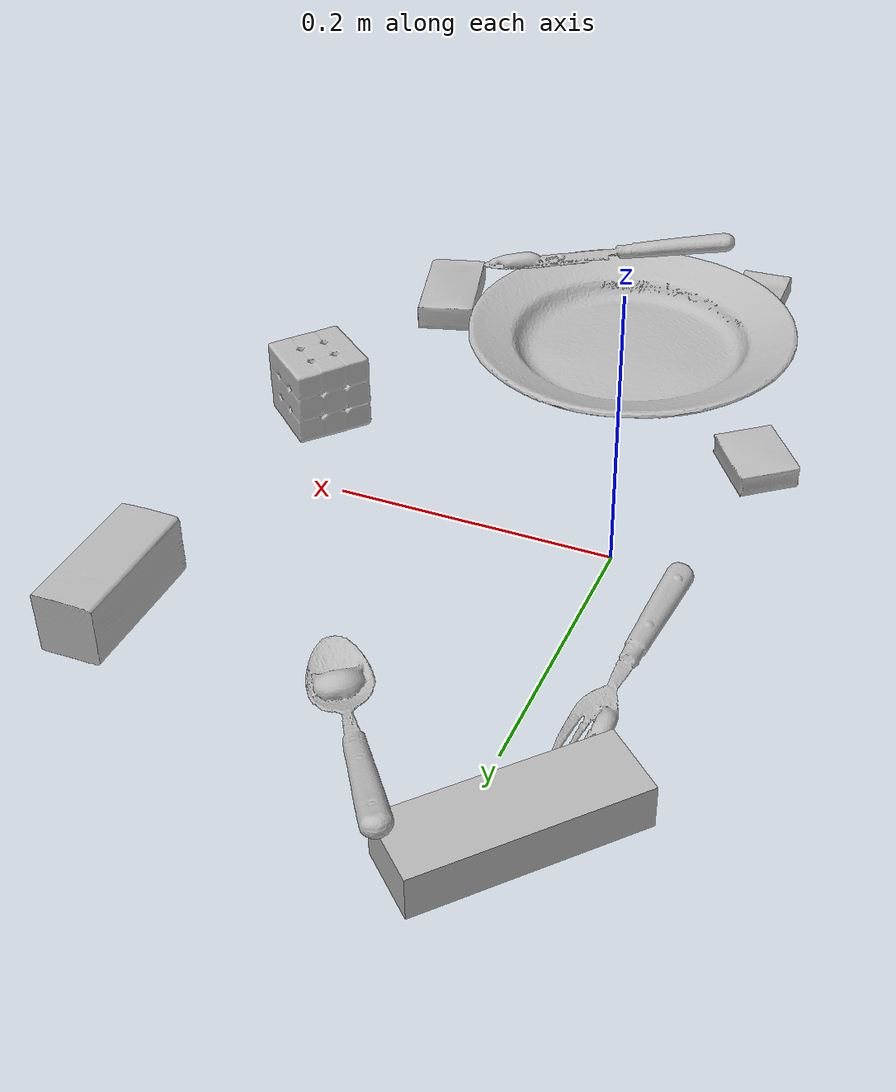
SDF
<sdf version="1.4">
  <world name="default">
    <light name="light1" type="point">
      <pose>0 0 1 0 0 0</pose>
      <diffuse>3 3 3 1</diffuse>
      <specular>3 3 3 1</specular>
    </light>
    <light name="light2" type="point">
      <pose>0 0.5 2 0 0 0</pose>
      <diffuse>1 1 1 1</diffuse>
      <specular>1 1 1 1</specular>
    </light>
    <light name="light3" type="point">
      <pose>0 0.5 2 0 0 0</pose>
      <diffuse>3 3 3 1</diffuse>
      <specular>3 3 3 1</specular>
    </light>
    <scene>
      <ambient>0.7 0.7 0.7</ambient>
    </scene>
    <model name="box11">
      <link name="link_box11">
        <collision name="default">
          <geometry>
            <mesh>
              <uri>model://rubiks_cube/collision_meshes/collision.obj</uri>
              <scale>1.0 1.0 1.0</scale>
            </mesh>
          </geometry>
          <surface>
            <friction>
              <ode>
                <mu>0.5</mu>
                <mu2>0.5</mu2>
              </ode>
            </friction>
          <contact>
        <ode>
            <max_vel>0</max_vel>
            <min_depth>0.0001</min_depth>
            <kp>1e8</kp>
        </ode>
    </contact></surface>
        </collision>
        <visual name="default">
          <geometry>
            <mesh>
              <uri>model://rubiks_cube/visual_meshes/visual.dae</uri>
              <scale>1.0 1.0 1.0</scale>
            </mesh>
          </geometry>
        </visual>
        <inertial>
          <mass>0.14537504315376282</mass>
          <pose>2.6721039830590598e-05 5.2569666877388954e-05 -7.264316082000732e-06 -0.05467316775404926 -0.09814130205097539 -0.03445549690793288</pose>
          <inertia>
            <ixx>8.032947e-05</ixx>
            <iyy>7.9954865e-05</iyy>
            <izz>8.099513e-05</izz>
            <ixy>0</ixy>
            <ixz>0</ixz>
            <iyz>0</iyz>
          </inertia>
        </inertial>
      </link>
      <pose>0.2582952082157135 -0.08215129375457764 0.02867896854877472 -3.470079433588274e-06 -9.81031619316328e-07 -2.253420506566624</pose>
    </model>
    <model name="box12">
      <link name="link_box12">
        <collision name="default">
          <geometry>
            <mesh>
              <uri>model://cracker_box/collision_meshes/collision.obj</uri>
              <scale>0.25 0.25 0.25</scale>
            </mesh>
          </geometry>
          <surface>
            <friction>
              <ode>
                <mu>0.5</mu>
                <mu2>0.5</mu2>
              </ode>
            </friction>
          <contact>
        <ode>
            <max_vel>0</max_vel>
            <min_depth>0.0001</min_depth>
            <kp>1e8</kp>
        </ode>
    </contact></surface>
        </collision>
        <visual name="default">
          <geometry>
            <mesh>
              <uri>model://cracker_box/visual_meshes/visual.dae</uri>
              <scale>0.25 0.25 0.25</scale>
            </mesh>
          </geometry>
        </visual>
        <inertial>
          <mass>0.04629049822688103</mass>
          <pose>0.00023660360602661967 6.358561950037256e-05 -0.00042573834070935845 -0.00031620769195764 -0.01110649332573822 0.0025467952358288496</pose>
          <inertia>
            <ixx>7.358898e-06</ixx>
            <iyy>1.2150985e-05</iyy>
            <izz>1.7340568e-05</izz>
            <ixy>0</ixy>
            <ixz>0</ixz>
            <iyz>0</iyz>
          </inertia>
        </inertial>
      </link>
      <pose>-0.004847409203648567 -0.3726579248905182 0.009138908237218857 7.081365057502057e-05 4.5505841923442013e-05 1.5950632095900714</pose>
    </model>
    <model name="box13">
      <link name="link_box13">
        <collision name="default">
          <geometry>
            <mesh>
              <uri>model://sugar_box/collision_meshes/collision.obj</uri>
              <scale>0.5 0.5 0.5</scale>
            </mesh>
          </geometry>
          <surface>
            <friction>
              <ode>
                <mu>0.5</mu>
                <mu2>0.5</mu2>
              </ode>
            </friction>
          <contact>
        <ode>
            <max_vel>0</max_vel>
            <min_depth>0.0001</min_depth>
            <kp>1e8</kp>
        </ode>
    </contact></surface>
        </collision>
        <visual name="default">
          <geometry>
            <mesh>
              <uri>model://sugar_box/visual_meshes/visual.dae</uri>
              <scale>0.5 0.5 0.5</scale>
            </mesh>
          </geometry>
        </visual>
        <inertial>
          <mass>0.06844717264175415</mass>
          <pose>0.0005171863595023751 1.924554817378521e-05 -0.00018182402709499002 -0.0004046259509043031 0.0010506635218006705 0.0026153792547683827</pose>
          <inertia>
            <ixx>1.4257497e-05</ixx>
            <iyy>4.608316e-05</iyy>
            <izz>5.5167053e-05</izz>
            <ixy>0</ixy>
            <ixz>0</ixz>
            <iyz>0</iyz>
          </inertia>
        </inertial>
      </link>
      <pose>0.2336077094078064 -0.27399247884750366 0.011399303562939167 0.0007755033923259927 -0.023432325145223875 1.8405262303510215</pose>
    </model>
    <model name="box21">
      <link name="link_box21">
        <collision name="default">
          <geometry>
            <mesh>
              <uri>model://wood_block/collision_meshes/collision.obj</uri>
              <scale>0.5 0.5 0.5</scale>
            </mesh>
          </geometry>
          <surface>
            <friction>
              <ode>
                <mu>0.5</mu>
                <mu2>0.5</mu2>
              </ode>
            </friction>
          <contact>
        <ode>
            <max_vel>0</max_vel>
            <min_depth>0.0001</min_depth>
            <kp>1e8</kp>
        </ode>
    </contact></surface>
        </collision>
        <visual name="default">
          <geometry>
            <mesh>
              <uri>model://wood_block/visual_meshes/visual.dae</uri>
              <scale>0.5 0.5 0.5</scale>
            </mesh>
          </geometry>
        </visual>
        <inertial>
          <mass>0.22006426751613617</mass>
          <pose>-2.9066577553749084e-06 -0.00028540476341731846 0.00013204292918089777 -0.05220890442695651 -0.005192696130650637 -0.006861379915905358</pose>
          <inertia>
            <ixx>7.361981e-05</ixx>
            <iyy>0.00023256506</iyy>
            <izz>0.00023169514</izz>
            <ixy>0</ixy>
            <ixz>0</ixz>
            <iyz>0</iyz>
          </inertia>
        </inertial>
      </link>
      <pose>0.27839916944503784 0.1705523431301117 0.022629262879490852 -0.005208586510444564 0.00571878930456676 -1.5671641322647112</pose>
    </model>
    <model name="box22">
      <link name="link_box22">
        <collision name="default">
          <geometry>
            <mesh>
              <uri>model://jenga/collision_meshes/collision.obj</uri>
              <scale>1.0 1.0 1.0</scale>
            </mesh>
          </geometry>
          <surface>
            <friction>
              <ode>
                <mu>0.5</mu>
                <mu2>0.5</mu2>
              </ode>
            </friction>
          <contact>
        <ode>
            <max_vel>0</max_vel>
            <min_depth>0.0001</min_depth>
            <kp>1e8</kp>
        </ode>
    </contact></surface>
        </collision>
        <visual name="default">
          <geometry>
            <mesh>
              <uri>model://jenga/visual_meshes/visual.dae</uri>
              <scale>1.0 1.0 1.0</scale>
            </mesh>
          </geometry>
        </visual>
        <inertial>
          <mass>0.1883949637413025</mass>
          <pose>-2.502855807051674e-07 -0.00010250010382151231 -4.0923405322246253e-05 0.0 -7.342154049184251e-07 0.0</pose>
          <inertia>
            <ixx>5.213346e-05</ixx>
            <iyy>0.0003532549</iyy>
            <izz>0.00037712968</izz>
            <ixy>0</ixy>
            <ixz>0</ixz>
            <iyz>0</iyz>
          </inertia>
        </inertial>
      </link>
      <pose>-0.03059922531247139 0.255535751581192 0.015000001527369022 1.571294169886612e-06 5.447294407423441e-07 0.8338368720301136</pose>
    </model>
    <model name="box23">
      <link name="link_box23">
        <collision name="default">
          <geometry>
            <mesh>
              <uri>model://pudding_box/collision_meshes/collision.obj</uri>
              <scale>0.5 0.5 0.5</scale>
            </mesh>
          </geometry>
          <surface>
            <friction>
              <ode>
                <mu>0.5</mu>
                <mu2>0.5</mu2>
              </ode>
            </friction>
          <contact>
        <ode>
            <max_vel>0</max_vel>
            <min_depth>0.0001</min_depth>
            <kp>1e8</kp>
        </ode>
    </contact></surface>
        </collision>
        <visual name="default">
          <geometry>
            <mesh>
              <uri>model://pudding_box/visual_meshes/visual.dae</uri>
              <scale>0.5 0.5 0.5</scale>
            </mesh>
          </geometry>
        </visual>
        <inertial>
          <mass>0.030779412016272545</mass>
          <pose>0.00024474109522998333 0.0004033942532259971 -0.0002594413817860186 0.0052131022413302 -0.00660379919873188 0.020079828882866795</pose>
          <inertia>
            <ixx>8.6986365e-06</ixx>
            <iyy>5.8525034e-06</iyy>
            <izz>1.2845808e-05</izz>
            <ixy>0</ixy>
            <ixz>0</ixz>
            <iyz>0</iyz>
          </inertia>
        </inertial>
      </link>
      <pose>-0.06338509172201157 -0.13425315916538239 0.009862900711596012 0.02234827239712679 -0.011391857284015205 -2.5046058363796218</pose>
    </model>
    <model name="plate1">
      <link name="link_plate1">
        <collision name="default">
          <geometry>
            <mesh>
              <uri>model://plate/collision_meshes/collision.obj</uri>
              <scale>1.0 1.0 1.0</scale>
            </mesh>
          </geometry>
          <surface>
            <friction>
              <ode>
                <mu>0.5</mu>
                <mu2>0.5</mu2>
              </ode>
            </friction>
          <contact>
        <ode>
            <max_vel>0</max_vel>
            <min_depth>0.0001</min_depth>
            <kp>1e8</kp>
        </ode>
    </contact></surface>
        </collision>
        <visual name="default">
          <geometry>
            <mesh>
              <uri>model://plate/visual_meshes/visual.dae</uri>
              <scale>1.0 1.0 1.0</scale>
            </mesh>
          </geometry>
        </visual>
        <inertial>
          <mass>0.2551877498626709</mass>
          <pose>-0.0006044633337296546 0.0002782584633678198 -0.0010561984963715076 0.002218758596895186 -0.003225500510611216 0.45261892370472845</pose>
          <inertia>
            <ixx>0.0011937734</ixx>
            <iyy>0.0011823553</iyy>
            <izz>0.002334842</izz>
            <ixy>0</ixy>
            <ixz>0</ixz>
            <iyz>0</iyz>
          </inertia>
        </inertial>
      </link>
      <pose>0.07127757370471954 -0.257760614156723 0.013733013533055782 -1.2626996119746539e-06 -3.3206037649262404e-06 2.9797991648822646</pose>
    </model>
    <model name="silverware1">
      <link name="link_silverware1">
        <collision name="default">
          <geometry>
            <mesh>
              <uri>model://knife/collision_meshes/collision.obj</uri>
              <scale>1.0 1.0 1.0</scale>
            </mesh>
          </geometry>
          <surface>
            <friction>
              <ode>
                <mu>0.5</mu>
                <mu2>0.5</mu2>
              </ode>
            </friction>
          <contact>
        <ode>
            <max_vel>0</max_vel>
            <min_depth>0.0001</min_depth>
            <kp>1e8</kp>
        </ode>
    </contact></surface>
        </collision>
        <visual name="default">
          <geometry>
            <mesh>
              <uri>model://knife/visual_meshes/visual.dae</uri>
              <scale>1.0 1.0 1.0</scale>
            </mesh>
          </geometry>
        </visual>
        <inertial>
          <mass>0.030903667211532593</mass>
          <pose>-0.023785250261425972 0.0015275125624611974 5.062023410573602e-05 0.07305665398911224 0.017248417197799442 -0.0074098217442817044</pose>
          <inertia>
            <ixx>8.7717143e-07</ixx>
            <iyy>0.00011872688</iyy>
            <izz>0.000119009375</izz>
            <ixy>0</ixy>
            <ixz>0</ixz>
            <iyz>0</iyz>
          </inertia>
        </inertial>
      </link>
      <pose>0.12248917669057846 -0.35388898849487305 0.03171232342720032 -3.12274741557758 0.04587102521937439 0.5089508799788618</pose>
    </model>
    <model name="silverware2">
      <link name="link_silverware2">
        <collision name="default">
          <geometry>
            <mesh>
              <uri>model://spoon/collision_meshes/collision.obj</uri>
              <scale>1.0 1.0 1.0</scale>
            </mesh>
          </geometry>
          <surface>
            <friction>
              <ode>
                <mu>0.5</mu>
                <mu2>0.5</mu2>
              </ode>
            </friction>
          <contact>
        <ode>
            <max_vel>0</max_vel>
            <min_depth>0.0001</min_depth>
            <kp>1e8</kp>
        </ode>
    </contact></surface>
        </collision>
        <visual name="default">
          <geometry>
            <mesh>
              <uri>model://spoon/visual_meshes/visual.dae</uri>
              <scale>1.0 1.0 1.0</scale>
            </mesh>
          </geometry>
        </visual>
        <inertial>
          <mass>0.020994963124394417</mass>
          <pose>-0.005526323337107897 -0.00160341733135283 -0.0007271658978424966 0.035216710718480135 -0.03906584501417282 0.00615060951780049</pose>
          <inertia>
            <ixx>1.1677738e-06</ixx>
            <iyy>7.988513e-05</iyy>
            <izz>8.046103e-05</izz>
            <ixy>0</ixy>
            <ixz>0</ixz>
            <iyz>0</iyz>
          </inertia>
        </inertial>
      </link>
      <pose>0.07736121118068695 0.23586270213127136 0.021242348477244377 -0.09524458480272092 0.2520110644771496 -0.973576168013181</pose>
    </model>
    <model name="silverware3">
      <link name="link_silverware3">
        <collision name="default">
          <geometry>
            <mesh>
              <uri>model://fork/collision_meshes/collision.obj</uri>
              <scale>1.0 1.0 1.0</scale>
            </mesh>
          </geometry>
          <surface>
            <friction>
              <ode>
                <mu>0.5</mu>
                <mu2>0.5</mu2>
              </ode>
            </friction>
          <contact>
        <ode>
            <max_vel>0</max_vel>
            <min_depth>0.0001</min_depth>
            <kp>1e8</kp>
        </ode>
    </contact></surface>
        </collision>
        <visual name="default">
          <geometry>
            <mesh>
              <uri>model://fork/visual_meshes/visual.dae</uri>
              <scale>1.0 1.0 1.0</scale>
            </mesh>
          </geometry>
        </visual>
        <inertial>
          <mass>0.012144052423536777</mass>
          <pose>-0.029570043087005615 0.0004658822144847363 0.0003218860656488687 -0.013551171335247731 -0.01097783699854739 0.014453902564514984</pose>
          <inertia>
            <ixx>4.257177e-07</ixx>
            <iyy>3.170462e-05</iyy>
            <izz>3.1895037e-05</izz>
            <ixy>0</ixy>
            <ixz>0</ixz>
            <iyz>0</iyz>
          </inertia>
        </inertial>
      </link>
      <pose>-0.0446404367685318 0.0992296040058136 0.0057087242603302 -0.1822952562386068 0.024674864349130535 1.504894439560779</pose>
    </model>
  <physics type="ode">
      <max_contacts>50</max_contacts>
      <ode>
        <solver>
          <type>quick</type>
          <iters>75</iters>
        </solver>
        <constraints>
          <contact_max_correcting_vel>0</contact_max_correcting_vel>
          <contact_surface_layer>0</contact_surface_layer>
        </constraints>
      </ode>
    </physics></world>
</sdf>
